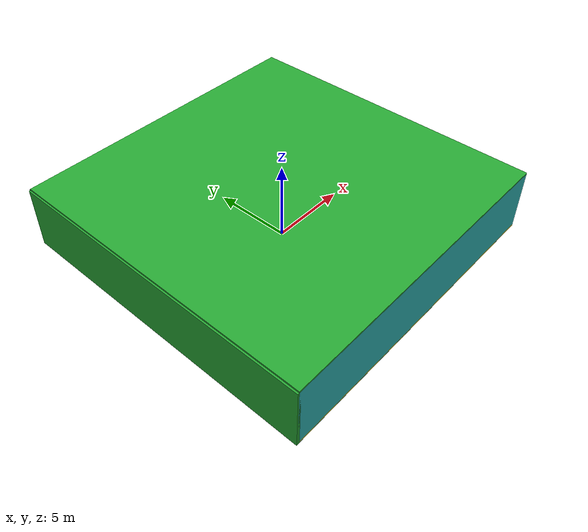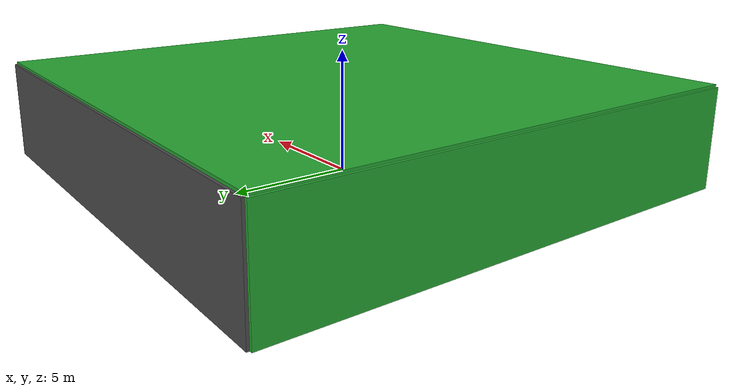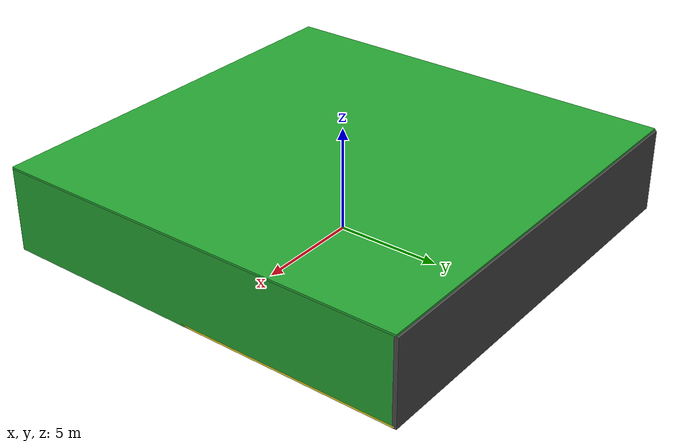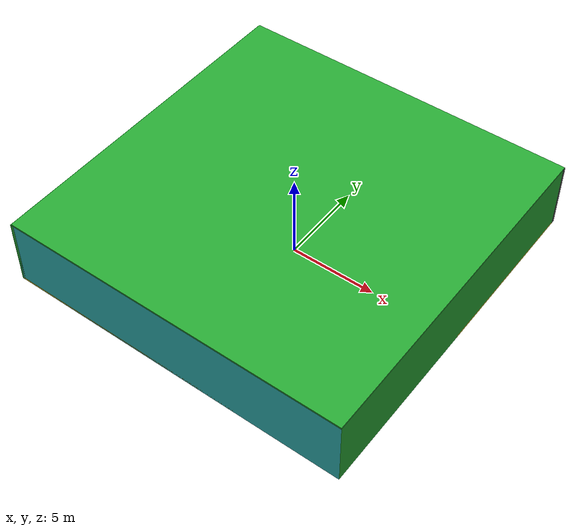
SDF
<sdf version="1.4">
 <world name="default">
  <physics type="ode">
   <max_step_size>0.001</max_step_size>
   <real_time_factor>1</real_time_factor>
   <real_time_update_rate>1000</real_time_update_rate>
   <gravity>0 0 -9.8</gravity>
  </physics>
  <scene><ambient>0.4 0.4 0.4 1</ambient><background>0.7 0.7 0.7 1</background><shadows>1</shadows></scene>
  <model name="Surrounding">
   <static>1</static>
   <link name="Ceiling">
    <collision name="Ceiling_Collision"><geometry><box><size>20 20 0.1</size></box></geometry></collision>
    <visual name="Ceiling_Visual">
     <geometry><box><size>20 20 0.1</size></box></geometry>
     <material>
      <script><uri>file://media/materials/scripts/gazebo.material</uri><name>Gazebo/GreenGlow</name></script>
     </material>
    </visual>
    <pose>0 0 4.05 0 0 0</pose>
   </link>
   <link name="Wall_South">
    <collision name="Wall_South_Collision">
     <geometry><box><size>20 0 4</size></box></geometry>
     <pose>0 0 2 0 -0 0</pose>
    </collision>
    <visual name="Wall_South_Visual">
     <pose>0 0 2 0 -0 0</pose>
     <geometry><box><size>20 0 4</size></box></geometry>
     <material>
      <script><uri>file://media/materials/scripts/gazebo.material</uri><name>Gazebo/TurquoiseGlow</name></script>
     </material>
    </visual>
    <velocity_decay><linear>0</linear><angular>0</angular></velocity_decay>
    <pose>0 -10 0 0 -0 0</pose>
   </link>
   <link name="Wall_East">
    <collision name="Wall_21_Collision">
     <geometry><box><size>20 0 4</size></box></geometry>
     <pose>0 0 2 0 -0 0</pose>
    </collision>
    <visual name="Wall_21_Visual">
     <pose>0 0 2 0 -0 0</pose>
     <geometry><box><size>20 0 4</size></box></geometry>
     <material>
      <script><uri>file://media/materials/scripts/gazebo.material</uri><name>Gazebo/GreenGlow</name></script>
     </material>
    </visual>
    <velocity_decay><linear>0</linear><angular>0</angular></velocity_decay>
    <pose>10 0 0 0 -0 1.5708</pose>
   </link>
   <link name="Wall_North">
    <collision name="Wall_22_Collision">
     <geometry><box><size>20 0.2 4</size></box></geometry>
     <pose>0 0 2 0 -0 0</pose>
    </collision>
    <visual name="Wall_22_Visual">
     <pose>0 0 2 0 -0 0</pose>
     <geometry><box><size>20 0.2 4</size></box></geometry>
     <material>
      <script><uri>file://media/materials/scripts/gazebo.material</uri><name>Gazebo/DarkGrey</name></script>
     </material>
    </visual>
    <velocity_decay><linear>0</linear><angular>0</angular></velocity_decay>
    <pose>0 10 0 0 -0 0</pose>
   </link>
   <link name="Wall_West">
    <collision name="Wall_23_Collision">
     <geometry><box><size>20 0.2 4</size></box></geometry>
     <pose>0 0 2 0 -0 0</pose>
    </collision>
    <visual name="Wall_23_Visual">
     <pose>0 0 2 0 -0 0</pose>
     <geometry><box><size>20 0.2 4</size></box></geometry>
     <material>
      <script><uri>file://media/materials/scripts/gazebo.material</uri><name>Gazebo/Green</name></script>
     </material>
    </visual>
    <velocity_decay><linear>0</linear><angular>0</angular></velocity_decay>
    <pose>-10 0 0 0 0 -1.5708</pose>
   </link>
   <link name="Ground_link">
    <collision name="collision">
     <pose>0 0 .05 0 -0 0</pose>
     <geometry><box><size>20 20 0.1</size></box></geometry>
    </collision>
    <visual name="visual">
     <pose>0 0 .05 0 -0 0</pose>
     <geometry><box><size>20 20 0.1</size></box></geometry>
     <material>
      <script><uri>file://media/materials/scripts/gazebo.material</uri><name>Gazebo/Yellow</name></script>
     </material>
    </visual>
   </link>
   <static>1</static>
  </model>
  <spherical_coordinates>
   <surface_model>EARTH_WGS84</surface_model>
   <latitude_deg>0</latitude_deg>
   <longitude_deg>0</longitude_deg>
   <elevation>0</elevation>
   <heading_deg>0</heading_deg>
  </spherical_coordinates>
  <light name="lightball_0" type="diffuse">
   <diffuse>0.8 0.8 0.8 1</diffuse>
   <specular>0.2 0.2 0.2 1</specular>
   <attenuation>
    <range>100</range>
    <constant>0.7</constant>
    <linear>0.01</linear>
    <quadratic>0.001</quadratic>
   </attenuation>
   <direction>-0.5 0.1 -0.9</direction>
   <pose>-1.33991708259 8.98819168604 1.97898458743 0 0 0</pose>
  </light>
  <light name="lightball_1" type="diffuse">
   <diffuse>0.8 0.8 0.8 1</diffuse>
   <specular>0.2 0.2 0.2 1</specular>
   <attenuation>
    <range>100</range>
    <constant>0.7</constant>
    <linear>0.01</linear>
    <quadratic>0.001</quadratic>
   </attenuation>
   <direction>-0.5 0.1 -0.9</direction>
   <pose>-8.69205624603 1.147371245 3.77421269906 0 0 0</pose>
  </light>
  <light name="lightball_2" type="diffuse">
   <diffuse>0.8 0.8 0.8 1</diffuse>
   <specular>0.2 0.2 0.2 1</specular>
   <attenuation>
    <range>100</range>
    <constant>0.7</constant>
    <linear>0.01</linear>
    <quadratic>0.001</quadratic>
   </attenuation>
   <direction>-0.5 0.1 -0.9</direction>
   <pose>3.6205933073 -9.18272985427 2.32803117563 0 0 0</pose>
  </light>
  <light name="lightball_3" type="diffuse">
   <diffuse>0.8 0.8 0.8 1</diffuse>
   <specular>0.2 0.2 0.2 1</specular>
   <attenuation>
    <range>100</range>
    <constant>0.7</constant>
    <linear>0.01</linear>
    <quadratic>0.001</quadratic>
   </attenuation>
   <direction>-0.5 0.1 -0.9</direction>
   <pose>-8.08112958438 5.22416074346 1.61346323695 0 0 0</pose>
  </light>
  <light name="lightball_4" type="diffuse">
   <diffuse>0.8 0.8 0.8 1</diffuse>
   <specular>0.2 0.2 0.2 1</specular>
   <attenuation>
    <range>100</range>
    <constant>0.7</constant>
    <linear>0.01</linear>
    <quadratic>0.001</quadratic>
   </attenuation>
   <direction>-0.5 0.1 -0.9</direction>
   <pose>-6.12131180674 -9.27709731559 3.39532767332 0 0 0</pose>
  </light>
  <include><uri>model://table</uri><pose>-7.88005879215 -2.1280557035 0 0 0 0.0185790867949</pose></include>
  <include>
   <uri>model://robocup_3Dsim_goal</uri>
   <pose>-8.2634621613 2.26213139999 0 0 0 2.31539120897</pose>
  </include>
  <include>
   <uri>model://robocup_3Dsim_goal</uri>
   <pose>-3.53605576103 5.37706814839 0 0 0 2.29000075193</pose>
  </include>
  <include>
   <uri>model://robocup_3Dsim_goal</uri>
   <pose>-2.46305930965 5.66948767399 0 0 0 1.87300710077</pose>
  </include>
 </world>
</sdf>

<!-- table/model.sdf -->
<sdf version="1.5">
  <model name="table">
    <static>true</static>
    <link name="link">
      <collision name="surface">
        <pose>0 0 1.0 0 0 0</pose>
        <geometry>
          <box>
            <size>1.5 0.8 0.03</size>
          </box>
        </geometry>
        <surface>
          <friction>
            <ode>
              <mu>0.6</mu>
              <mu2>0.6</mu2>
            </ode>
          </friction>
        </surface>
      </collision>
      <visual name="visual1">
        <pose>0 0 1.0 0 0 0</pose>
        <geometry>
          <box>
            <size>1.5 0.8 0.03</size>
          </box>
        </geometry>
        <material>
          <script>
            <uri>model://media/materials/scripts/gazebo.material</uri>
            <name>Gazebo/Wood</name>
          </script>
        </material>
      </visual>
      <collision name="front_left_leg">
        <pose>0.68 0.38 0.5 0 0 0</pose>
        <geometry>
          <cylinder>
            <radius>0.02</radius>
            <length>1.0</length>
          </cylinder>
        </geometry>
      </collision>
      <visual name="front_left_leg">
        <pose>0.68 0.38 0.5 0 0 0</pose>
        <geometry>
          <cylinder>
            <radius>0.02</radius>
            <length>1.0</length>
          </cylinder>
        </geometry>
        <material>
          <script>
            <uri>model://media/materials/scripts/gazebo.material</uri>
            <name>Gazebo/Grey</name>
          </script>
        </material>
      </visual>
      <collision name="front_right_leg">
        <pose>0.68 -0.38 0.5 0 0 0</pose>
        <geometry>
          <cylinder>
            <radius>0.02</radius>
            <length>1.0</length>
          </cylinder>
        </geometry>
      </collision>
      <visual name="front_right_leg">
        <pose>0.68 -0.38 0.5 0 0 0</pose>
        <geometry>
          <cylinder>
            <radius>0.02</radius>
            <length>1.0</length>
          </cylinder>
        </geometry>
        <material>
          <script>
            <uri>model://media/materials/scripts/gazebo.material</uri>
            <name>Gazebo/Grey</name>
          </script>
        </material>
      </visual>
      <collision name="back_right_leg">
        <pose>-0.68 -0.38 0.5 0 0 0</pose>
        <geometry>
          <cylinder>
            <radius>0.02</radius>
            <length>1.0</length>
          </cylinder>
        </geometry>
      </collision>
      <visual name="back_right_leg">
        <pose>-0.68 -0.38 0.5 0 0 0</pose>
        <geometry>
          <cylinder>
            <radius>0.02</radius>
            <length>1.0</length>
          </cylinder>
        </geometry>
        <material>
          <script>
            <uri>model://media/materials/scripts/gazebo.material</uri>
            <name>Gazebo/Grey</name>
          </script>
        </material>
      </visual>
      <collision name="back_left_leg">
        <pose>-0.68 0.38 0.5 0 0 0</pose>
        <geometry>
          <cylinder>
            <radius>0.02</radius>
            <length>1.0</length>
          </cylinder>
        </geometry>
      </collision>
      <visual name="back_left_leg">
        <pose>-0.68 0.38 0.5 0 0 0</pose>
        <geometry>
          <cylinder>
            <radius>0.02</radius>
            <length>1.0</length>
          </cylinder>
        </geometry>
        <material>
          <script>
            <uri>model://media/materials/scripts/gazebo.material</uri>
            <name>Gazebo/Grey</name>
          </script>
        </material>
      </visual>
    </link>
  </model>
</sdf>

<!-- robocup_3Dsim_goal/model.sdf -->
<sdf version="1.5">
  <model name="robocup_3d_goal">
    <static>true</static>
    <link name="left_post">
      <pose>0 1.05 0.45 0 0 0</pose>
      <collision name="collision">
        <geometry>
          <cylinder>
            <radius>0.05</radius>
            <length>0.9</length>
          </cylinder>
        </geometry>
      </collision>
      <visual name="visual">
        <geometry>
          <cylinder>
            <radius>0.05</radius>
            <length>0.9</length>
          </cylinder>
        </geometry>
        <material>
          <script>
            <uri>file://media/materials/scripts/gazebo.material</uri>
            <name>Gazebo/ZincYellow</name>
          </script>
        </material>
      </visual>
    </link>
    <link name="left_support_horiz_lower">
      <pose>0.30 1.05 0.01 0 0 0</pose>
      <collision name="collision">
        <geometry>
          <box>
            <size>0.50 0.02 0.02</size>
          </box>
        </geometry>
      </collision>
      <visual name="visual">
        <geometry>
          <box>
            <size>0.50 0.02 0.02</size>
          </box>
        </geometry>
        <material>
          <script>
            <uri>file://media/materials/scripts/gazebo.material</uri>
            <name>Gazebo/White</name>
          </script>
        </material>
      </visual>
    </link>
    <link name="left_support_horiz_upper">
      <pose>0.30 1.05 0.79 0 0 0</pose>
      <collision name="collision">
        <geometry>
          <box>
            <size>0.50 0.02 0.02</size>
          </box>
        </geometry>
      </collision>
      <visual name="visual">
        <geometry>
          <box>
            <size>0.50 0.02 0.02</size>
          </box>
        </geometry>
        <material>
          <script>
            <uri>file://media/materials/scripts/gazebo.material</uri>
            <name>Gazebo/White</name>
          </script>
        </material>
      </visual>
    </link>
    <link name="left_support_vertical">
      <pose>0.56 1.05 0.4 0 1.5708 0</pose>
      <collision name="collision">
        <geometry>
          <box>
            <size>0.80 0.02 0.02</size>
          </box>
        </geometry>
      </collision>
      <visual name="visual">
        <geometry>
          <box>
            <size>0.80 0.02 0.02</size>
          </box>
        </geometry>
        <material>
          <script>
            <uri>file://media/materials/scripts/gazebo.material</uri>
            <name>Gazebo/White</name>
          </script>
        </material>
      </visual>
    </link>
    <link name="right_support_horiz_lower">
      <pose>0.30 -1.05 0.01 0 0 0</pose>
      <collision name="collision">
        <geometry>
          <box>
            <size>0.50 0.02 0.02</size>
          </box>
        </geometry>
      </collision>
      <visual name="visual">
        <geometry>
          <box>
            <size>0.50 0.02 0.02</size>
          </box>
        </geometry>
        <material>
          <script>
            <uri>file://media/materials/scripts/gazebo.material</uri>
            <name>Gazebo/White</name>
          </script>
        </material>
      </visual>
    </link>
    <link name="right_support_horiz_upper">
      <pose>0.30 -1.05 0.79 0 0 0</pose>
      <collision name="collision">
        <geometry>
          <box>
            <size>0.50 0.02 0.02</size>
          </box>
        </geometry>
      </collision>
      <visual name="visual">
        <geometry>
          <box>
            <size>0.50 0.02 0.02</size>
          </box>
        </geometry>
        <material>
          <script>
            <uri>file://media/materials/scripts/gazebo.material</uri>
            <name>Gazebo/White</name>
          </script>
        </material>
      </visual>
    </link>
    <link name="right_support_vertical">
      <pose>0.56 -1.05 0.4 0 1.5708 0</pose>
      <collision name="collision">
        <geometry>
          <box>
            <size>0.80 0.02 0.02</size>
          </box>
        </geometry>
      </collision>
      <visual name="visual">
        <geometry>
          <box>
            <size>0.80 0.02 0.02</size>
          </box>
        </geometry>
        <material>
          <script>
            <uri>file://media/materials/scripts/gazebo.material</uri>
            <name>Gazebo/White</name>
          </script>
        </material>
      </visual>
    </link>
    <link name="center_support_horiz_lower">
      <pose>0.56 0 0.01 0 1.5708 0</pose>
      <collision name="collision">
        <geometry>
          <box>
            <size>0.02 2.08 0.02</size>
          </box>
        </geometry>
      </collision>
      <visual name="visual">
        <geometry>
          <box>
            <size>0.02 2.08 0.02</size>
          </box>
        </geometry>
        <material>
          <script>
            <uri>file://media/materials/scripts/gazebo.material</uri>
            <name>Gazebo/White</name>
          </script>
        </material>
      </visual>
    </link>
    <link name="center_support_horiz_upper">
      <pose>0.56 0 0.79 0 1.5708 0</pose>
      <collision name="collision">
        <geometry>
          <box>
            <size>0.02 2.08 0.02</size>
          </box>
        </geometry>
      </collision>
      <visual name="visual">
        <geometry>
          <box>
            <size>0.02 2.08 0.02</size>
          </box>
        </geometry>
        <material>
          <script>
            <uri>file://media/materials/scripts/gazebo.material</uri>
            <name>Gazebo/White</name>
          </script>
        </material>
      </visual>
    </link>
    <link name="right_post">
      <pose>0 -1.05 0.45 0 0 0</pose>
      <collision name="collision">
        <geometry>
          <cylinder>
            <radius>0.05</radius>
            <length>0.9</length>
          </cylinder>
        </geometry>
      </collision>
      <visual name="visual">
        <geometry>
          <cylinder>
            <radius>0.05</radius>
            <length>0.9</length>
          </cylinder>
        </geometry>
        <material>
          <script>
            <uri>file://media/materials/scripts/gazebo.material</uri>
            <name>Gazebo/ZincYellow</name>
          </script>
        </material>
      </visual>
    </link>
    <link name="crossbar">
      <pose>0 0 0.85 1.57 1.57 0</pose>
      <collision name="collision">
        <geometry>
          <cylinder>
            <radius>0.05</radius>
            <length>2.0</length>
          </cylinder>
        </geometry>
      </collision>
      <visual name="visual">
        <geometry>
          <cylinder>
            <radius>0.05</radius>
            <length>2.0</length>
          </cylinder>
        </geometry>
        <material>
          <script>
            <uri>file://media/materials/scripts/gazebo.material</uri>
            <name>Gazebo/ZincYellow</name>
          </script>
        </material>
      </visual>
    </link>
    <link name="center_net">
      <pose>0.56 0 0.40 0 0 0</pose>
      <collision name="collision">
        <geometry>
          <box>
            <size>0.01 2.1 0.80</size>
          </box>
        </geometry>
      </collision>
      <visual name="visual">
        <geometry>
          <box>
            <size>0.01 2.1 0.80</size>
          </box>
        </geometry>
        <material>
          <script>
            <uri>model://../model_source/models/robocup09_spl_field/materials/scripts/</uri>
            <uri>model://../model_source/models/robocup09_spl_field/materials/textures/</uri>
            <name>RoboCup/Net</name>
          </script>
        </material>
      </visual>
    </link>
    <link name="left_net">
      <pose>0.30 1.05 0.40 0 0 0</pose>
      <collision name="collision">
        <geometry>
          <box>
            <size>0.50 0.01 0.76</size>
          </box>
        </geometry>
      </collision>
      <visual name="visual">
        <geometry>
          <box>
            <size>0.50 0.01 0.76</size>
          </box>
        </geometry>
        <material>
          <script>
            <uri>model://../model_source/models/robocup09_spl_field/materials/scripts/</uri>
            <uri>model://../model_source/models/robocup09_spl_field/materials/textures/</uri>
            <name>RoboCup/Net</name>
          </script>
        </material>
      </visual>
    </link>
    <link name="right_net">
      <pose>0.30 -1.05 0.40 0 0 0</pose>
      <collision name="collision">
        <geometry>
          <box>
            <size>0.50 0.01 0.76</size>
          </box>
        </geometry>
      </collision>
      <visual name="visual">
        <geometry>
          <box>
            <size>0.50 0.01 0.76</size>
          </box>
        </geometry>
        <material>
          <script>
            <uri>model://../model_source/models/robocup09_spl_field/materials/scripts/</uri>
            <uri>model://../model_source/models/robocup09_spl_field/materials/textures/</uri>
            <name>RoboCup/Net</name>
          </script>
        </material>
      </visual>
    </link>
  </model>
</sdf>
